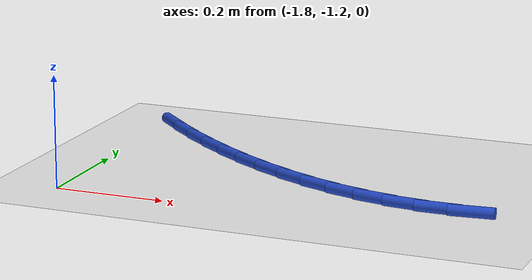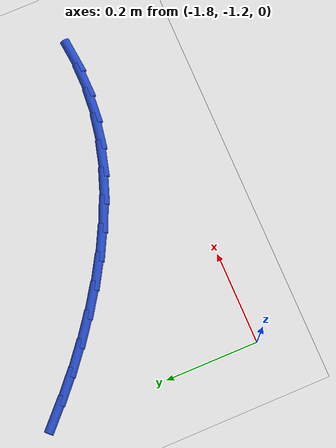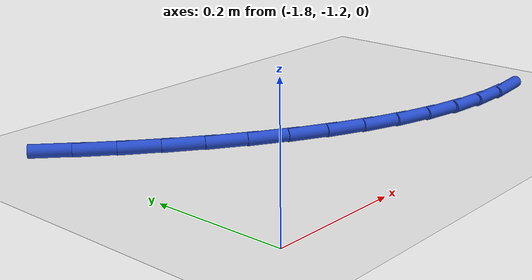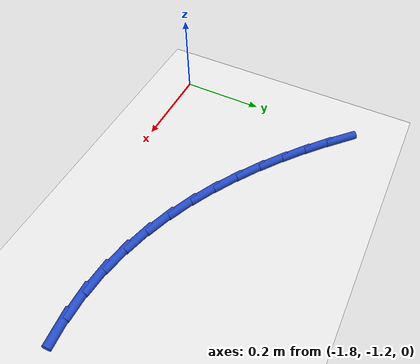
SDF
<sdf version="1.6">
 <world name="default">
  <model name="ground_plane">
   <static>1</static>
   <link name="link">
    <collision name="collision">
     <geometry><plane><normal>0 0 1</normal><size>100 100</size></plane></geometry>
     <surface><friction><ode><mu>100</mu><mu2>50</mu2></ode></friction></surface>
    </collision>
    <visual name="visual">
     <cast_shadows>0</cast_shadows>
     <geometry><plane><normal>0 0 1</normal><size>100 100</size></plane></geometry>
     <material>
      <script><uri>file://media/materials/scripts/gazebo.material</uri><name>Gazebo/WhiteGlow</name></script>
     </material>
    </visual>
   </link>
  </model>
  <model name="line">
   <link name="link_69">
    <pose>-1.7778925621012884 -0.765024549633296 0.01 0 1.57 -0.758133955443683</pose>
    <collision name="collision">
     <geometry><cylinder><radius>0.01</radius><length>0.08</length></cylinder></geometry>
    </collision>
    <visual name="visual">
     <material>
      <script><name>Gazebo/Blue</name><uri>file://media/materials/scripts/gazebo.material</uri></script>
     </material>
     <geometry><cylinder><radius>0.01</radius><length>0.08</length></cylinder></geometry>
    </visual>
   </link>
   <link name="link_70">
    <pose>-1.7335332319673382 -0.8070286652218112 0.01 0 1.57 -0.7154862680195359</pose>
    <collision name="collision">
     <geometry><cylinder><radius>0.01</radius><length>0.08</length></cylinder></geometry>
    </collision>
    <visual name="visual">
     <material>
      <script><name>Gazebo/Blue</name><uri>file://media/materials/scripts/gazebo.material</uri></script>
     </material>
     <geometry><cylinder><radius>0.01</radius><length>0.08</length></cylinder></geometry>
    </visual>
   </link>
   <link name="link_71">
    <pose>-1.6871587152924241 -0.8473333802274239 0.01 0 1.57 -0.6748623958015508</pose>
    <collision name="collision">
     <geometry><cylinder><radius>0.01</radius><length>0.08</length></cylinder></geometry>
    </collision>
    <visual name="visual">
     <material>
      <script><name>Gazebo/Blue</name><uri>file://media/materials/scripts/gazebo.material</uri></script>
     </material>
     <geometry><cylinder><radius>0.01</radius><length>0.08</length></cylinder></geometry>
    </visual>
   </link>
   <link name="link_72">
    <pose>-1.6389768700944543 -0.885888454364704 0.01 0 1.57 -0.6321215437350144</pose>
    <collision name="collision">
     <geometry><cylinder><radius>0.01</radius><length>0.08</length></cylinder></geometry>
    </collision>
    <visual name="visual">
     <material>
      <script><name>Gazebo/Blue</name><uri>file://media/materials/scripts/gazebo.material</uri></script>
     </material>
     <geometry><cylinder><radius>0.01</radius><length>0.08</length></cylinder></geometry>
    </visual>
   </link>
   <link name="link_73">
    <pose>-1.589155284352889 -0.9223762463761549 0.01 0 1.57 -0.5851842959316695</pose>
    <collision name="collision">
     <geometry><cylinder><radius>0.01</radius><length>0.08</length></cylinder></geometry>
    </collision>
    <visual name="visual">
     <material>
      <script><name>Gazebo/Blue</name><uri>file://media/materials/scripts/gazebo.material</uri></script>
     </material>
     <geometry><cylinder><radius>0.01</radius><length>0.08</length></cylinder></geometry>
    </visual>
   </link>
   <link name="link_74">
    <pose>-1.5378457352414674 -0.9563741281460088 0.01 0 1.57 -0.533373456196975</pose>
    <collision name="collision">
     <geometry><cylinder><radius>0.01</radius><length>0.08</length></cylinder></geometry>
    </collision>
    <visual name="visual">
     <material>
      <script><name>Gazebo/Blue</name><uri>file://media/materials/scripts/gazebo.material</uri></script>
     </material>
     <geometry><cylinder><radius>0.01</radius><length>0.08</length></cylinder></geometry>
    </visual>
   </link>
   <link name="link_75">
    <pose>-1.4851999624839332 -0.9874592228831736 0.01 0 1.57 -0.4759696043017546</pose>
    <collision name="collision">
     <geometry><cylinder><radius>0.01</radius><length>0.08</length></cylinder></geometry>
    </collision>
    <visual name="visual">
     <material>
      <script><name>Gazebo/Blue</name><uri>file://media/materials/scripts/gazebo.material</uri></script>
     </material>
     <geometry><cylinder><radius>0.01</radius><length>0.08</length></cylinder></geometry>
    </visual>
   </link>
   <link name="link_76">
    <pose>-1.43136970580403 -1.01520865379656 0.01 0 1.57 -0.41223184977426836</pose>
    <collision name="collision">
     <geometry><cylinder><radius>0.01</radius><length>0.08</length></cylinder></geometry>
    </collision>
    <visual name="visual">
     <material>
      <script><name>Gazebo/Blue</name><uri>file://media/materials/scripts/gazebo.material</uri></script>
     </material>
     <geometry><cylinder><radius>0.01</radius><length>0.08</length></cylinder></geometry>
    </visual>
   </link>
   <link name="link_77">
    <pose>-1.3765067049255038 -1.0391995440950763 0.01 0 1.57 -0.34144638181154235</pose>
    <collision name="collision">
     <geometry><cylinder><radius>0.01</radius><length>0.08</length></cylinder></geometry>
    </collision>
    <visual name="visual">
     <material>
      <script><name>Gazebo/Blue</name><uri>file://media/materials/scripts/gazebo.material</uri></script>
     </material>
     <geometry><cylinder><radius>0.01</radius><length>0.08</length></cylinder></geometry>
    </visual>
   </link>
   <link name="link_78">
    <pose>-1.320762699572098 -1.0590090169876336 0.01 0 1.57 -0.2630085468718755</pose>
    <collision name="collision">
     <geometry><cylinder><radius>0.01</radius><length>0.08</length></cylinder></geometry>
    </collision>
    <visual name="visual">
     <material>
      <script><name>Gazebo/Blue</name><uri>file://media/materials/scripts/gazebo.material</uri></script>
     </material>
     <geometry><cylinder><radius>0.01</radius><length>0.08</length></cylinder></geometry>
    </visual>
   </link>
   <link name="link_79">
    <pose>-1.2642894294675582 -1.0742141956831406 0.01 0 1.57 -0.17654519785391348</pose>
    <collision name="collision">
     <geometry><cylinder><radius>0.01</radius><length>0.08</length></cylinder></geometry>
    </collision>
    <visual name="visual">
     <material>
      <script><name>Gazebo/Blue</name><uri>file://media/materials/scripts/gazebo.material</uri></script>
     </material>
     <geometry><cylinder><radius>0.01</radius><length>0.08</length></cylinder></geometry>
    </visual>
   </link>
   <link name="link_80">
    <pose>-1.207238634335627 -1.0843922033905067 0.01 0 1.57 -0.08243306171024274</pose>
    <collision name="collision">
     <geometry><cylinder><radius>0.01</radius><length>0.08</length></cylinder></geometry>
    </collision>
    <visual name="visual">
     <material>
      <script><name>Gazebo/Blue</name><uri>file://media/materials/scripts/gazebo.material</uri></script>
     </material>
     <geometry><cylinder><radius>0.01</radius><length>0.08</length></cylinder></geometry>
    </visual>
   </link>
   <link name="link_81">
    <pose>-1.149761792757023 -1.0891409565529484 0.01 0 1.57 0.01145085511214109</pose>
    <collision name="collision">
     <geometry><cylinder><radius>0.01</radius><length>0.08</length></cylinder></geometry>
    </collision>
    <visual name="visual">
     <material>
      <script><name>Gazebo/Blue</name><uri>file://media/materials/scripts/gazebo.material</uri></script>
     </material>
     <geometry><cylinder><radius>0.01</radius><length>0.08</length></cylinder></geometry>
    </visual>
   </link>
   <link name="link_82">
    <pose>-1.09200509354048 -1.0884795640504907 0.01 0 1.57 0.09746478195228002</pose>
    <collision name="collision">
     <geometry><cylinder><radius>0.01</radius><length>0.08</length></cylinder></geometry>
    </collision>
    <visual name="visual">
     <material>
      <script><name>Gazebo/Blue</name><uri>file://media/materials/scripts/gazebo.material</uri></script>
     </material>
     <geometry><cylinder><radius>0.01</radius><length>0.08</length></cylinder></geometry>
    </visual>
   </link>
  </model>
 </world>
</sdf>
